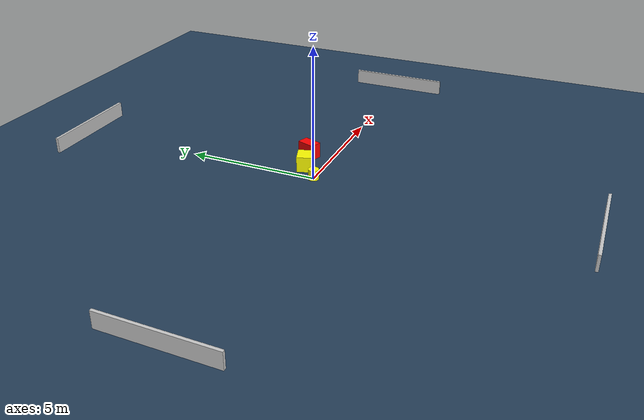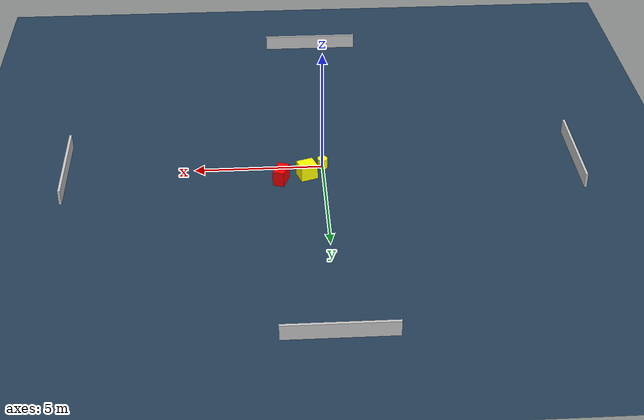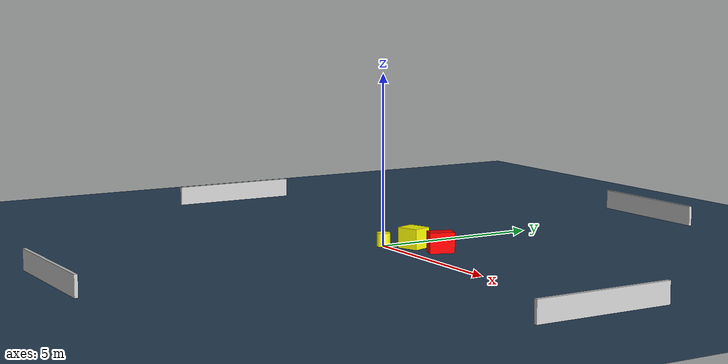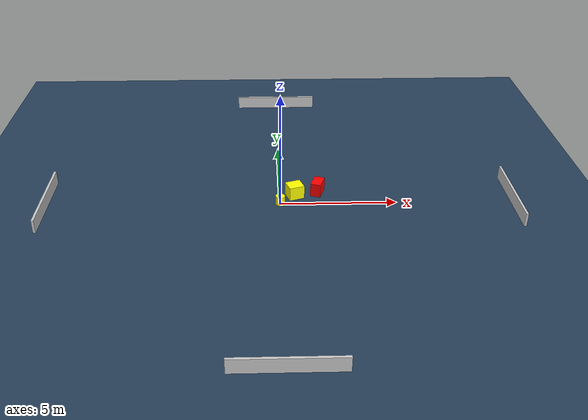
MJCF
<?xml version="1.0" ?>
<mujoco model="generated_environment">
  <option timestep="0.01" integrator="RK4" cone="elliptic"/>
  <default>
    <geom density="1"/>
  </default>
  <asset>
    <texture builtin="gradient" height="3072" name="skybox" rgb1="0.3 0.5 0.7" rgb2="0 0 0" type="skybox" width="512"/>
    <texture builtin="checker" height="300" name="groundplane" rgb1="0.2 0.3 0.4" rgb2="0.1 0.2 0.3" type="2d" width="300"/>
    <material name="groundplane" reflectance="0.2" texrepeat="5 5" texture="groundplane"/>
  </asset>
  <worldbody>
    <light dir="0 0 -1" directional="true" pos="0 0 1.5"/>
    <geom condim="3" friction="0.5 0.005 0.001" material="groundplane" name="floor" pos="0 0 0" size="0 0 0.05" type="plane"/>
    <body name="walls">
      <geom name="wall_1" condim="4" pos="-10.0 0.0 0.3" rgba="0.800000011920929 0.800000011920929 0.800000011920929 1.0" size="0.05 2.0 0.3" type="box"/>
      <geom name="wall_2" condim="4" pos="10.0 0.0 0.3" rgba="0.800000011920929 0.800000011920929 0.800000011920929 1.0" size="0.05 2.0 0.3" type="box"/>
      <geom name="wall_3" condim="4" pos="0.0 -10.0 0.3" rgba="0.800000011920929 0.800000011920929 0.800000011920929 1.0" size="2.0 0.05 0.3" type="box"/>
      <geom name="wall_4" condim="4" pos="0.0 10.0 0.3" rgba="0.800000011920929 0.800000011920929 0.800000011920929 1.0" size="2.0 0.05 0.3" type="box"/>
    </body>
    <body name="robot">
      <joint name="joint_x" type="slide" pos="0 0 0" axis="1 0 0"/>
      <joint name="joint_y" type="slide" pos="0 0 0" axis="0 1 0"/>
      <geom name="robot" type="cylinder" pos="0.0 0.0 0.2" size="0.2 0.2 0.0" mass="5.0" friction="1.0 0.005 0.0001" condim="4" rgba="1.0 1.0 0.0 1.0"/>
    </body>
    <body name="obstacle_1_movable">
      <geom name="obstacle_1_movable" condim="4" pos="0.6412892217899024 0.6220649813786596 0.3" euler="0 0 18.84121056906855" friction="0.0 0.005 0.001" rgba="1.0 1.0 0.0 1.0" size="0.3363230973177781 0.29493778940234583 0.3" type="box" mass="0.1"/>
      <joint type="free"/>
    </body>
    <body name="obstacle_2_static">
      <geom name="obstacle_2_static" condim="4" pos="1.6526486589029232 0.89906969970267 0.3" euler="0 0 160.52924914283906" friction="0.0 0.005 0.001" rgba="1.0 0.0 0.0 1.0" size="0.22102428191253776 0.3597254077023727 0.3" type="box"/>
    </body>
  </worldbody>
  <actuator>
    <motor name="actuator_x" joint="joint_x" gear="1" ctrlrange="-1 1"/>
    <motor name="actuator_y" joint="joint_y" gear="1" ctrlrange="-1 1"/>
  </actuator>
</mujoco>
